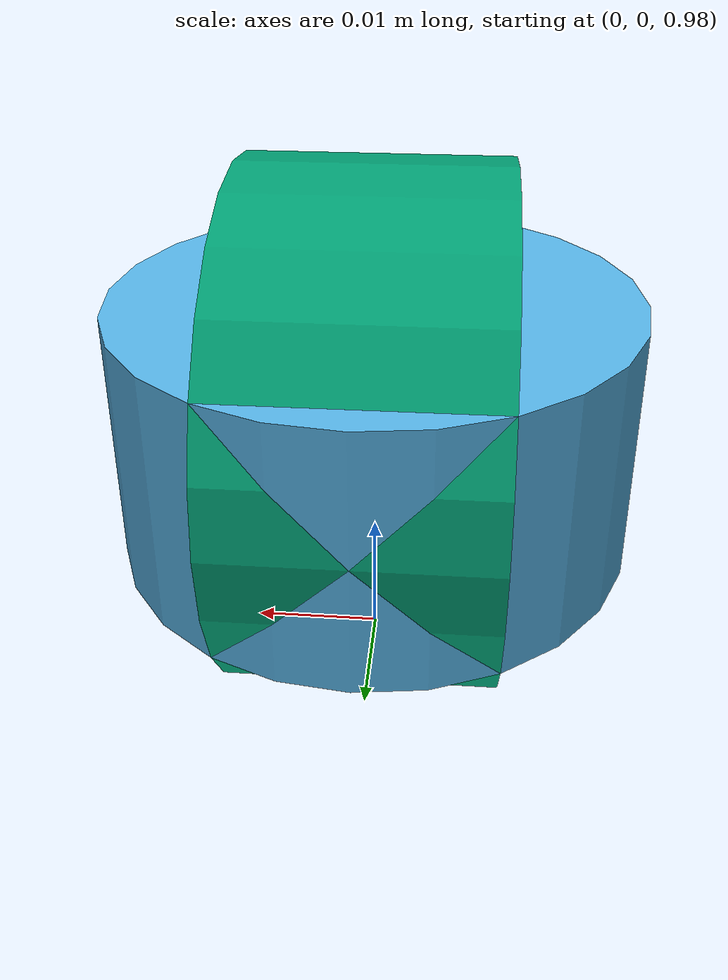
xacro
<?xml version="1.0" encoding="utf-8"?>

<robot name = "lidar simulation" xmlns:xacro="http://www.ros.org/wiki/xacro">
    <link name="world">
        <static>true</static>
    </link>

    <link name = "camera_base_link">
        <inertial>
            <mass value="0.1" />
            <origin xyz="0 0 0" rpy="0 0 0"/>
            <inertia ixx="1e-6" ixy="0" ixz="0" iyy="1e-6" iyz="0" izz="1e-6" />
        </inertial>
        <collision>
            <origin xyz = "0 0 0" rpy = "0 0 0"/>
            <geometry>
                <cylinder radius="0.02" length="0.02"/>
            </geometry>
        </collision>
        <visual>
            <origin xyz = "0 0 0" rpy = "0 0 0"/>
            <geometry>
                <cylinder radius="0.02" length="0.02"/>
            </geometry>
        </visual>
    </link>

    <link name = "optical_link">
        <inertial>
            <mass value="0.1" />
            <origin xyz="0 0 0" rpy="0 0 0"/>
            <inertia ixx="1e-6" ixy="0" ixz="0" iyy="1e-6" iyz="0" izz="1e-6" />
        </inertial>
        <collision>
            <origin xyz = "0 0 0" rpy = "0 0 0"/>
            <geometry>
                <cylinder radius="0.02" length="0.02"/>
            </geometry>
        </collision>
        <visual>
            <origin xyz = "0 0 0" rpy = "0 0 0"/>
            <geometry>
                <cylinder radius="0.02" length="0.02"/>
            </geometry>
        </visual>
    </link>

    <joint name = "camera_joint" type = "fixed">
        <axis xyz = "0 0 0" />
        <origin xyz="0 0 1.0" rpy="0 0 0"/>
        <parent link="world"/>
        <child link="camera_base_link"/>
    </joint>

    <joint name = "optical_joint" type = "fixed">
        <axis xyz = "0 0 0" />
        <origin xyz="0 0 0" rpy="-1.5708 0 -1.5708"/>
        <parent link="camera_base_link"/>
        <child link="optical_link"/>
    </joint>

    <gazebo reference="camera_base_link">
      <sensor name="rgbd_camera" type="depth">
        <update_rate>30</update_rate>
        <camera>
          <horizontal_fov>1.308996939</horizontal_fov>
          <vertical_fov>1.134464014</vertical_fov>
          <image>
            <width>320</width>
            <height>288</height>
            <format>R8G8B8</format>
          </image>
          <clip>
            <near>0.5</near>
            <far>5.46</far>
          </clip>
        </camera>
        <plugin name="rgbd_controller" filename="libgazebo_ros_openni_kinect.so">
          <baseline>0.2</baseline>
          <alwaysOn>true</alwaysOn>
          <updateRate>1.0</updateRate>
          <cameraName>rgbd_ir</cameraName>
          <imageTopicName>/rgbd/color/image_raw</imageTopicName>
          <cameraInfoTopicName>/rgbd/color/camera_info</cameraInfoTopicName>
          <depthImageTopicName>/rgbd/depth/image_raw</depthImageTopicName>
          <depthImageInfoTopicName>/rgbd/depth/camera_info</depthImageInfoTopicName>
          <pointCloudTopicName>/rgbd/depth/points</pointCloudTopicName>
          <frameName>optical_link</frameName>
          <pointCloudCutoff>0.5</pointCloudCutoff>
          <pointCloudCutoffMax>5.46</pointCloudCutoffMax>
          <distortionK1>0.00000001</distortionK1>
          <distortionK2>0.00000001</distortionK2>
          <distortionK3>0.00000001</distortionK3>
          <distortionT1>0.00000001</distortionT1>
          <distortionT2>0.00000001</distortionT2>
          <CxPrime>0</CxPrime>
          <Cx>0</Cx>
          <Cy>0</Cy>
          <focalLength>0</focalLength>
          <hackBaseline>0</hackBaseline>
        </plugin>
      </sensor>
    </gazebo>
</robot>
